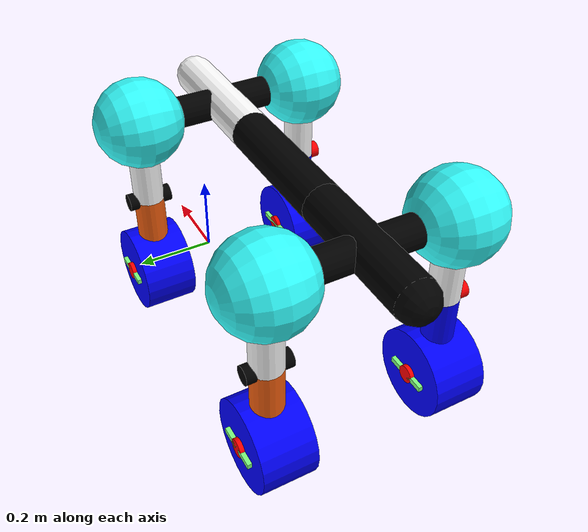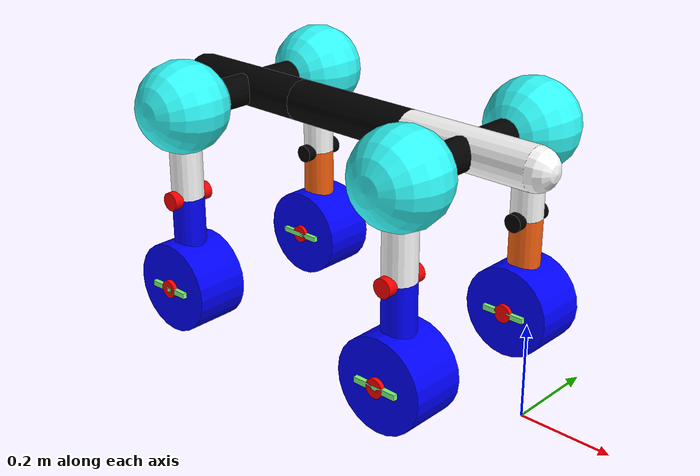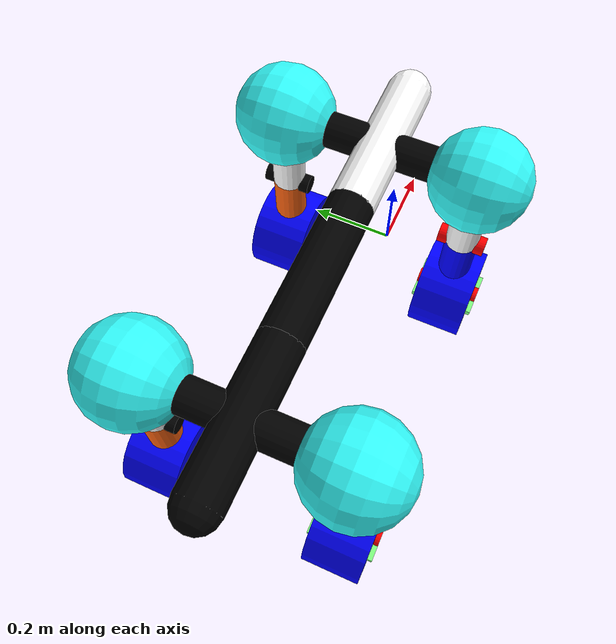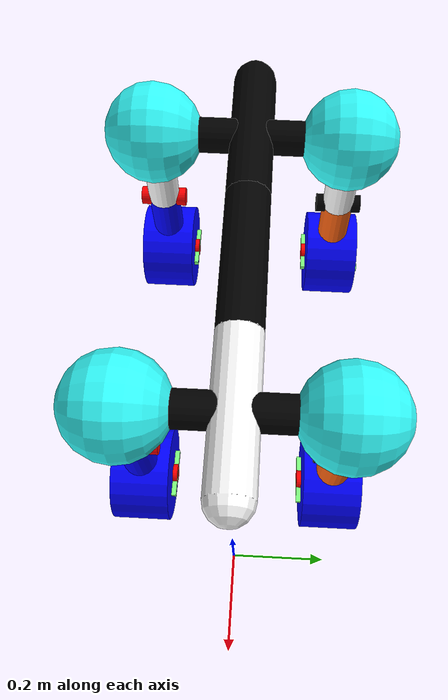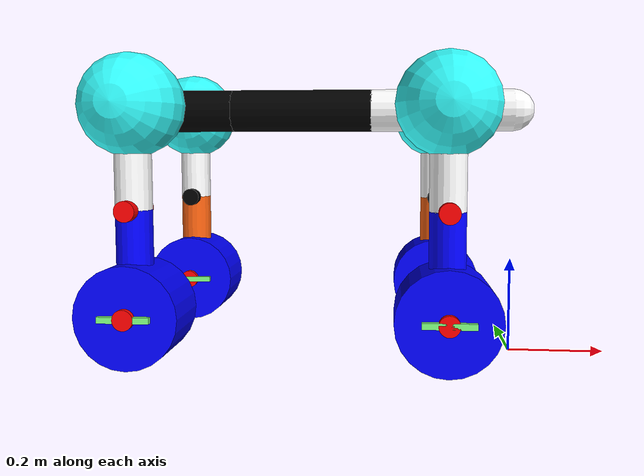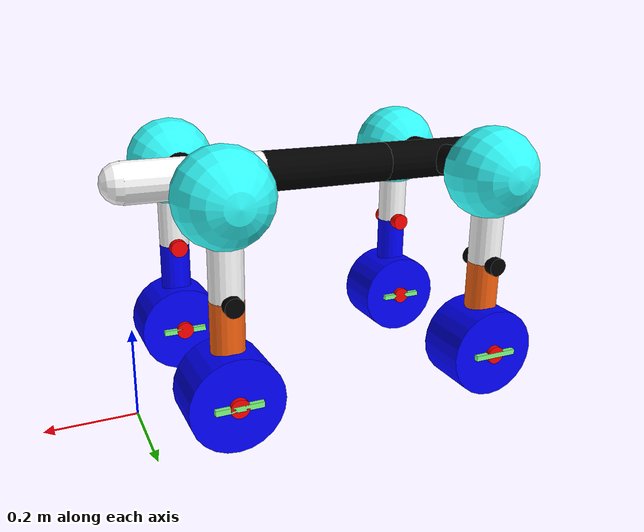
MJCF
<mujoco model="robot">
    <compiler angle="degree" inertiafromgeom="true" />
    <option gravity="0 0 0" />
    <default class="decor">
        <site type="box" rgba="0.5 1 0.5 1" />
    </default>
    <asset>
        <material name="default" rgba="0.97 0.38 0.06 1.0" />
        <material name="red" rgba="1.0 0.0 0.0 1.0" />
        <material name="green" rgba="0.0 1.0 0.0 1.0" />
        <material name="blue" rgba="0.0 0.0 1.0 1.0" />
        <material name="white" rgba="1.0 1.0 1.0 1.0" />
        <material name="black" rgba="0.0 0.0 0.0 1.0" />
    </asset>
    <worldbody>
        <body name="root" pos="0.0 0.0 0.52" quat="1.0 0.0 0.0 0.0">
            <freejoint name="freejoint" />
            <geom type="capsule" fromto="-0.3 0.0 0.0 0.0 0.0 0.0" size="0.045" density="1000.0"
                friction="1.5 0.005 0.0001" material="white" name="geom0" />
            <geom type="capsule" fromto="-0.15 -0.2 0.0 -0.15 0.2 0.0" size="0.035" density="1000.0"
                friction="1.5 0.005 0.0001" material="black" name="geom1" />
            <body name="body0" pos="-0.3 0.0 0.0" quat="1.0 0.0 0.0 0.0">
                <geom type="capsule" fromto="-0.3 0.0 0.0 0.0 0.0 0.0" size="0.045" density="1000.0"
                    friction="1.5 0.005 0.0001" material="black" name="geom2" />
                <body name="body1" pos="-0.3 0.0 0.0" quat="1.0 0.0 0.0 0.0">
                    <geom type="capsule" fromto="-0.3 0.0 0.0 0.0 0.0 0.0" size="0.045"
                        density="1000.0" friction="1.5 0.005 0.0001" material="black" name="geom3" />
                    <geom type="capsule" fromto="-0.15 -0.2 0.0 -0.15 0.2 0.0" size="0.035"
                        density="1000.0" friction="1.5 0.005 0.0001" material="black" name="geom4" />
                    <body name="body2" pos="-0.15 -0.2 0.0"
                        quat="0.5000000000000001 0.4999999999999999 -0.5 0.5">
                        <geom type="capsule" fromto="-0.2 0.0 0.0 0.0 0.0 0.0" size="0.035"
                            density="1000.0" friction="1.5 0.005 0.0001" material="white"
                            name="geom5" />
                        <joint type="hinge" pos="0.0 0.0 0.0" axis="1.0 0.0 0.0" range="-45.0 45.0"
                            limited="true" damping="1.0" stiffness="2.0" armature="0.005"
                            name="joint6" />
                        <joint type="hinge" pos="0.0 0.0 0.0" axis="0.0 1.0 0.0" range="-60.0 60.0"
                            limited="true" damping="1.0" stiffness="2.0" armature="0.005"
                            name="joint7" />
                        <joint type="hinge" pos="0.0 0.0 0.0" axis="0.0 0.0 1.0" range="-60.0 60.0"
                            limited="true" damping="1.0" stiffness="2.0" armature="0.005"
                            name="joint8" />
                        <site name="site0" type="sphere" pos="0.0 0.0 0.0" size="0.1"
                            rgba="0.2 1.0 1.0 1.0" />
                        <body name="body3" pos="-0.2 0.0 0.0" quat="1.0 0.0 0.0 0.0">
                            <geom type="capsule" fromto="-0.2 0.0 0.0 0.0 0.0 0.0" size="0.035"
                                density="1000.0" friction="1.5 0.005 0.0001" material="blue"
                                name="geom6" />
                            <joint type="hinge" pos="0.0 0.0 0.0" axis="0.0 0.0 1.0"
                                range="-90.0 90.0" limited="true" damping="1.0" stiffness="2.0"
                                armature="0.005" name="joint9" />
                            <site type="cylinder" fromto="0.0 0.0 -0.05 0.0 0.0 0.05" size="0.02"
                                rgba="1.0 0.0 0.0 1.0" />
                            <body name="right_wheel2" pos="-0.2 0.0 0.0" quat="1.0 0.0 0.0 0.0">
                                <geom type="cylinder" fromto="0.0 0.0 -0.06 0.0 0.0 0.06"
                                    size="0.1" density="1000.0" friction="1.5 0.005 0.0001"
                                    material="blue" name="geom7" />
                                <site class="decor" size="0.006 0.05 0.07" />
                                <joint type="hinge" pos="0.0 0.0 0.0" axis="0.0 0.0 1.0"
                                    damping="0.03" stiffness="0.0" armature="0.005" name="right2" />
                                <site type="cylinder" fromto="0.0 0.0 -0.07 0.0 0.0 0.07"
                                    size="0.02" rgba="1.0 0.0 0.0 1.0" />
                            </body>
                        </body>
                    </body>
                    <body name="body4" pos="-0.15 0.2 0.0"
                        quat="0.5000000000000001 -0.4999999999999999 -0.5 -0.5">
                        <geom type="capsule" fromto="-0.2 -0.0 0.0 0.0 -0.0 0.0" size="0.035"
                            density="1000.0" friction="1.5 0.005 0.0001" material="white"
                            name="geom8" />
                        <joint type="hinge" pos="0.0 0.0 0.0" axis="-1.0 -0.0 -0.0"
                            range="-45.0 45.0" limited="true" damping="1.0" stiffness="2.0"
                            armature="0.005" name="joint10" />
                        <joint type="hinge" pos="0.0 0.0 0.0" axis="0.0 1.0 0.0" range="-60.0 60.0"
                            limited="true" damping="1.0" stiffness="2.0" armature="0.005"
                            name="joint11" />
                        <joint type="hinge" pos="0.0 0.0 0.0" axis="-0.0 -0.0 -1.0"
                            range="-60.0 60.0" limited="true" damping="1.0" stiffness="2.0"
                            armature="0.005" name="joint12" />
                        <site name="site1" type="sphere" pos="0.0 0.0 0.0" size="0.1"
                            rgba="0.2 1.0 1.0 1.0" />
                        <body name="body5" pos="-0.2 -0.0 0.0" quat="1.0 0.0 0.0 0.0">
                            <geom type="capsule" fromto="-0.2 -0.0 0.0 0.0 -0.0 0.0" size="0.035"
                                density="1000.0" friction="1.5 0.005 0.0001" material="default"
                                name="geom9" />
                            <joint type="hinge" pos="0.0 0.0 0.0" axis="-0.0 -0.0 -1.0"
                                range="-90.0 90.0" limited="true" damping="1.0" stiffness="2.0"
                                armature="0.005" name="joint13" />
                            <site type="cylinder" fromto="0.0 0.0 0.05 0.0 0.0 -0.05" size="0.02"
                                rgba="-1.0 -0.0 -0.0 1.0" />
                            <body name="left_wheel2" pos="-0.2 0.0 0.0" quat="1.0 0.0 0.0 0.0">
                                <geom type="cylinder" fromto="0.0 0.0 -0.06 0.0 0.0 0.06"
                                    size="0.1" density="1000.0" friction="1.5 0.005 0.0001"
                                    material="blue" name="geom10" />
                                <site class="decor" size="0.006 0.05 0.07" />
                                <joint type="hinge" pos="0.0 0.0 0.0" axis="0.0 0.0 1.0"
                                    damping="0.03" stiffness="0.0" armature="0.005" name="left2" />
                                <site type="cylinder" fromto="0.0 0.0 -0.07 0.0 0.0 0.07"
                                    size="0.02" rgba="1.0 0.0 0.0 1.0" />
                            </body>
                        </body>
                    </body>
                </body>
            </body>
            <body name="body10" pos="-0.15 -0.2 0.0"
                quat="0.5000000000000001 0.4999999999999999 -0.5 0.5">
                <geom type="capsule" fromto="-0.2 0.0 0.0 0.0 0.0 0.0" size="0.035" density="1000.0"
                    friction="1.5 0.005 0.0001" material="white" name="geom11" />
                <joint type="hinge" pos="0.0 0.0 0.0" axis="1.0 0.0 0.0" range="-45.0 45.0"
                    limited="true" damping="1.0" stiffness="2.0" armature="0.005" name="joint22" />
                <joint type="hinge" pos="0.0 0.0 0.0" axis="0.0 1.0 0.0" range="-60.0 60.0"
                    limited="true" damping="1.0" stiffness="2.0" armature="0.005" name="joint23" />
                <joint type="hinge" pos="0.0 0.0 0.0" axis="0.0 0.0 1.0" range="-60.0 60.0"
                    limited="true" damping="1.0" stiffness="2.0" armature="0.005" name="joint24" />
                <site name="site2" type="sphere" pos="0.0 0.0 0.0" size="0.1" rgba="0.2 1.0 1.0 1.0" />
                <body name="body11" pos="-0.2 0.0 0.0" quat="1.0 0.0 0.0 0.0">
                    <geom type="capsule" fromto="-0.2 0.0 0.0 0.0 0.0 0.0" size="0.035"
                        density="1000.0" friction="1.5 0.005 0.0001" material="blue" name="geom12" />
                    <joint type="hinge" pos="0.0 0.0 0.0" axis="0.0 0.0 1.0" range="-90.0 90.0"
                        limited="true" damping="1.0" stiffness="2.0" armature="0.005" name="joint25" />
                    <site type="cylinder" fromto="0.0 0.0 -0.05 0.0 0.0 0.05" size="0.02"
                        rgba="1.0 0.0 0.0 1.0" />
                    <body name="right_wheel" pos="-0.2 0.0 0.0" quat="1.0 0.0 0.0 0.0">
                        <geom type="cylinder" fromto="0.0 0.0 -0.06 0.0 0.0 0.06" size="0.1"
                            density="1000.0" friction="1.5 0.005 0.0001" material="blue"
                            name="geom13" />
                        <site class="decor" size="0.006 0.05 0.07" />
                        <joint type="hinge" pos="0.0 0.0 0.0" axis="0.0 0.0 1.0" damping="0.03"
                            stiffness="0.0" armature="0.005" name="right" />
                        <site type="cylinder" fromto="0.0 0.0 -0.07 0.0 0.0 0.07" size="0.02"
                            rgba="1.0 0.0 0.0 1.0" />
                    </body>
                </body>
            </body>
            <body name="body12" pos="-0.15 0.2 0.0"
                quat="0.5000000000000001 -0.4999999999999999 -0.5 -0.5">
                <geom type="capsule" fromto="-0.2 -0.0 0.0 0.0 -0.0 0.0" size="0.035"
                    density="1000.0" friction="1.5 0.005 0.0001" material="white" name="geom14" />
                <joint type="hinge" pos="0.0 0.0 0.0" axis="-1.0 -0.0 -0.0" range="-45.0 45.0"
                    limited="true" damping="1.0" stiffness="2.0" armature="0.005" name="joint26" />
                <joint type="hinge" pos="0.0 0.0 0.0" axis="0.0 1.0 0.0" range="-60.0 60.0"
                    limited="true" damping="1.0" stiffness="2.0" armature="0.005" name="joint27" />
                <joint type="hinge" pos="0.0 0.0 0.0" axis="-0.0 -0.0 -1.0" range="-60.0 60.0"
                    limited="true" damping="1.0" stiffness="2.0" armature="0.005" name="joint28" />
                <site name="site3" type="sphere" pos="0.0 0.0 0.0" size="0.1" rgba="0.2 1.0 1.0 1.0" />
                <body name="body13" pos="-0.2 -0.0 0.0" quat="1.0 0.0 0.0 0.0">
                    <geom type="capsule" fromto="-0.2 -0.0 0.0 0.0 -0.0 0.0" size="0.035"
                        density="1000.0" friction="1.5 0.005 0.0001" material="default"
                        name="geom15" />
                    <joint type="hinge" pos="0.0 0.0 0.0" axis="-0.0 -0.0 -1.0" range="-90.0 90.0"
                        limited="true" damping="1.0" stiffness="2.0" armature="0.005" name="joint29" />
                    <site type="cylinder" fromto="0.0 0.0 0.05 0.0 0.0 -0.05" size="0.02"
                        rgba="-1.0 -0.0 -0.0 1.0" />
                    <body name="left_wheel" pos="-0.2 0.0 0.0" quat="1.0 0.0 0.0 0.0">
                        <geom type="cylinder" fromto="0.0 0.0 -0.06 0.0 0.0 0.06" size="0.1"
                            density="1000.0" friction="1.5 0.005 0.0001" material="blue"
                            name="geom16" />
                        <site class="decor" size="0.006 0.05 0.07" />
                        <joint type="hinge" pos="0.0 0.0 0.0" axis="0.0 0.0 1.0" damping="0.03"
                            stiffness="0.0" armature="0.005" name="left" />
                        <site type="cylinder" fromto="0.0 0.0 -0.07 0.0 0.0 0.07" size="0.02"
                            rgba="1.0 0.0 0.0 1.0" />
                    </body>
                </body>
            </body>
        </body>
    </worldbody>
    <actuator>
        <motor ctrllimited="true" ctrlrange="-1 1" gear="22.5" joint="joint6" name="actuator0" />
        <motor ctrllimited="true" ctrlrange="-1 1" gear="22.5" joint="joint7" name="actuator1" />
        <motor ctrllimited="true" ctrlrange="-1 1" gear="22.5" joint="joint8" name="actuator2" />
        <motor ctrllimited="true" ctrlrange="-1 1" gear="22.5" joint="joint9" name="actuator3" />
        <motor ctrllimited="true" ctrlrange="-1 1" gear="45" joint="right2" name="actuator4" />
        <motor ctrllimited="true" ctrlrange="-1 1" gear="22.5" joint="joint10" name="actuator5" />
        <motor ctrllimited="true" ctrlrange="-1 1" gear="22.5" joint="joint11" name="actuator6" />
        <motor ctrllimited="true" ctrlrange="-1 1" gear="22.5" joint="joint12" name="actuator7" />
        <motor ctrllimited="true" ctrlrange="-1 1" gear="22.5" joint="joint13" name="actuator8" />
        <motor ctrllimited="true" ctrlrange="-1 1" gear="45" joint="left2" name="actuator9" />
        <motor ctrllimited="true" ctrlrange="-1 1" gear="22.5" joint="joint22" name="actuator10" />
        <motor ctrllimited="true" ctrlrange="-1 1" gear="22.5" joint="joint23" name="actuator11" />
        <motor ctrllimited="true" ctrlrange="-1 1" gear="22.5" joint="joint24" name="actuator12" />
        <motor ctrllimited="true" ctrlrange="-1 1" gear="22.5" joint="joint25" name="actuator13" />
        <motor ctrllimited="true" ctrlrange="-1 1" gear="45" joint="right" name="actuator14" />
        <motor ctrllimited="true" ctrlrange="-1 1" gear="22.5" joint="joint26" name="actuator15" />
        <motor ctrllimited="true" ctrlrange="-1 1" gear="22.5" joint="joint27" name="actuator16" />
        <motor ctrllimited="true" ctrlrange="-1 1" gear="22.5" joint="joint28" name="actuator17" />
        <motor ctrllimited="true" ctrlrange="-1 1" gear="22.5" joint="joint29" name="actuator18" />
        <motor ctrllimited="true" ctrlrange="-1 1" gear="45" joint="left" name="actuator19" />
    </actuator>
</mujoco>
